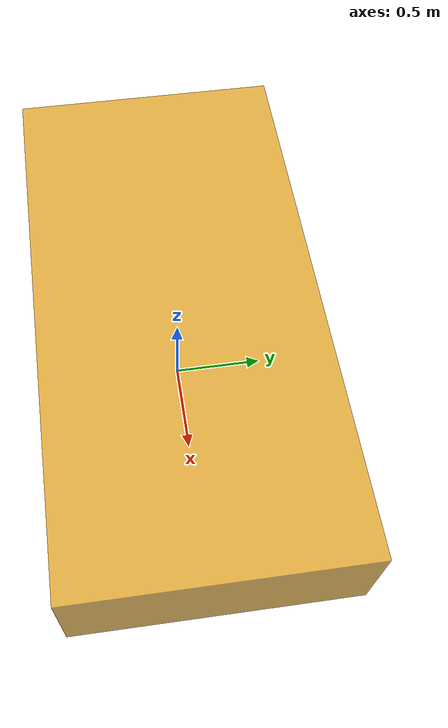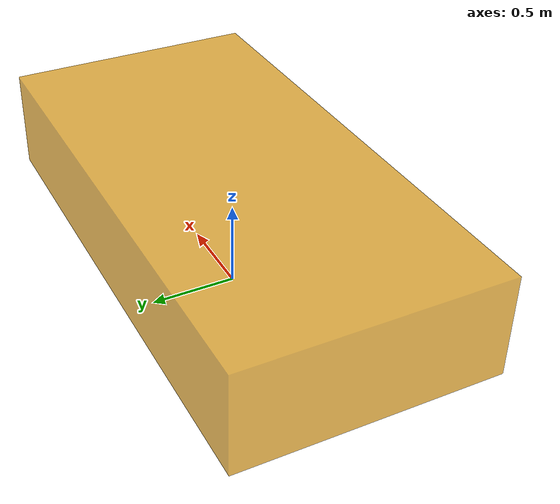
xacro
<!-- 底盘 -->
<robot xmlns:xacro="http://www.ros.org/wiki/xacro">
    <!-- 车体尺寸 -->
    <xacro:property name="car_length" value="3.0"/>
    <xacro:property name="car_width" value="1.5"/>
    <xacro:property name="car_height" value="0.6"/>

    <!-- 离地间隙 -->
    <xacro:property name="ground_height" value="0.2"/>

    <!-- 包含子文件, 要在参数定义之后, 子文件才能使用父文件的参数 -->
    <xacro:include filename="car_wheels.xacro"/>

    <!-- 颜色 -->
    <material name="yellow">
        <color rgba="0.9 0.6 0.0 0.7"/>
    </material>

    <!-- 底盘在地面的投影点 (TF 根节点) -->
    <link name="base_footprint"/>

    <!-- 底盘 -->
    <link name="base_link">
        <visual>
            <geometry>
                <box size="${car_length} ${car_width} ${car_height}"/>
            </geometry>
            <material name="yellow"/>
        </visual>
    </link>

    <!-- 底盘关联到投影点 -->
    <joint name="base_to_footprint" type="fixed">
        <parent link="base_footprint"/>
        <child link="base_link"/>
        <origin xyz="0.0 0.0 ${car_height / 2.0 + ground_height}"/>
    </joint>
</robot>
